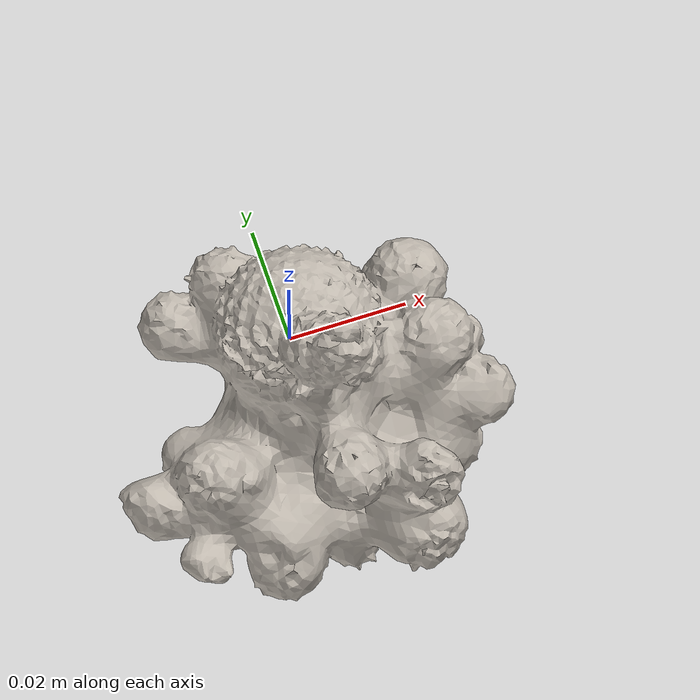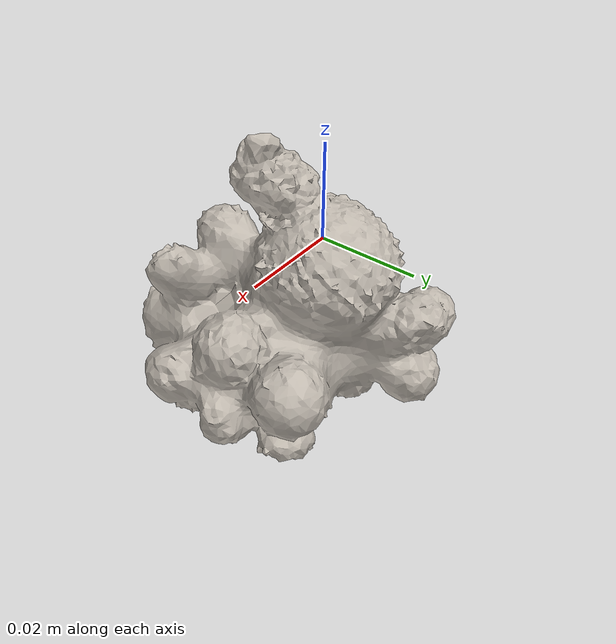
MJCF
<mujoco model="bread">
  <asset>
    <mesh file="nontextured.stl" name="obj_mesh" scale="0.8 0.8 0.8"/>
    <texture file="../../../../../textures/bread.png" type="2d" name="tex-bread" />
    <material name="bread" reflectance="0.7" texrepeat="15 15" texture="tex-bread" texuniform="true"/>
  </asset>
  <worldbody>
    <body>
      <body name="collision">
        <geom pos="0.005958500000000002 -0.028458500000000005 -0.0353235" mesh="obj_mesh" type="mesh" solimp="0.998 0.998 0.001" solref="0.001 1" density="50" friction="0.95 0.3 0.1"  material="bread" group="1" condim="4"/>
      </body>
      <body name="visual">
        <geom pos="0.005958500000000002 -0.028458500000000005 -0.0353235" mesh="obj_mesh" type="mesh" material="bread"  conaffinity="0" contype="0"  group="0" mass="0.0001"/>
        <geom pos="0.005958500000000002 -0.028458500000000005 -0.0353235" mesh="obj_mesh" type="mesh" material="bread"  conaffinity="0" contype="0"  group="1" mass="0.0001"/>
      </body>
      <site rgba="0 0 0 0" size="0.005" pos="0 0 -0.0357555" name="bottom_site"/>
      <site rgba="0 0 0 0" size="0.005" pos="0 0 0.0357555" name="top_site"/>
      <site rgba="0 0 0 0" size="0.005" pos="0.043401499999999996 0.0386815 0.0357555" name="horizontal_radius_site"/>
    </body>
  </worldbody>
</mujoco>
